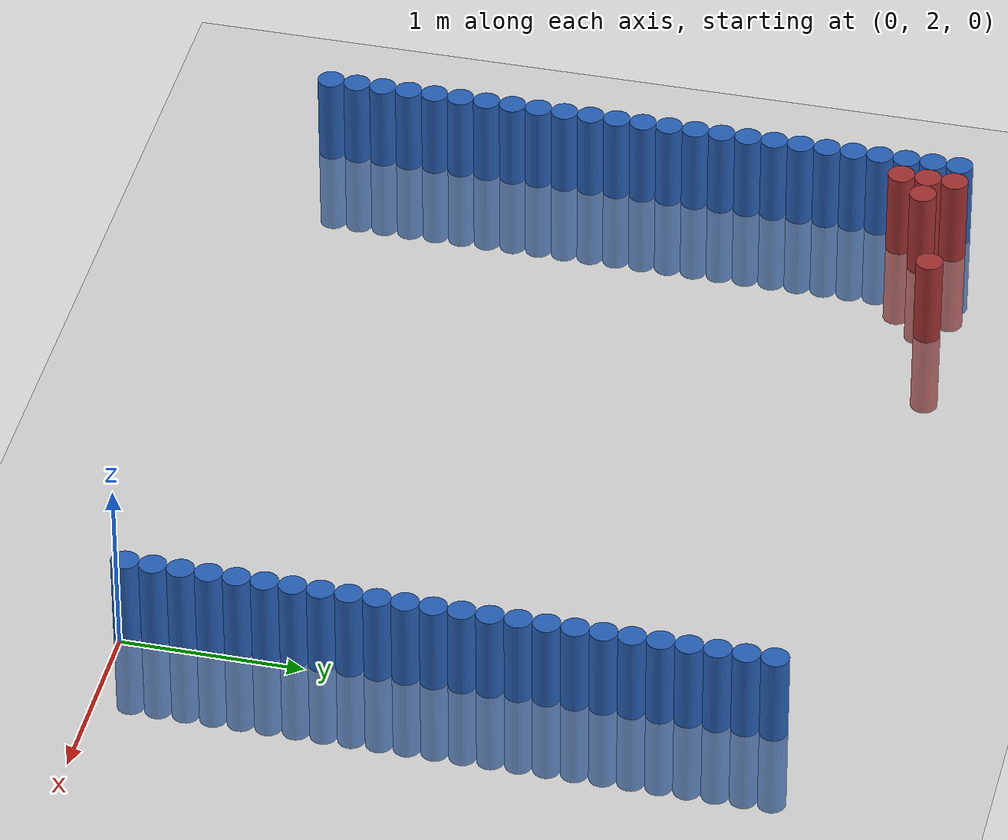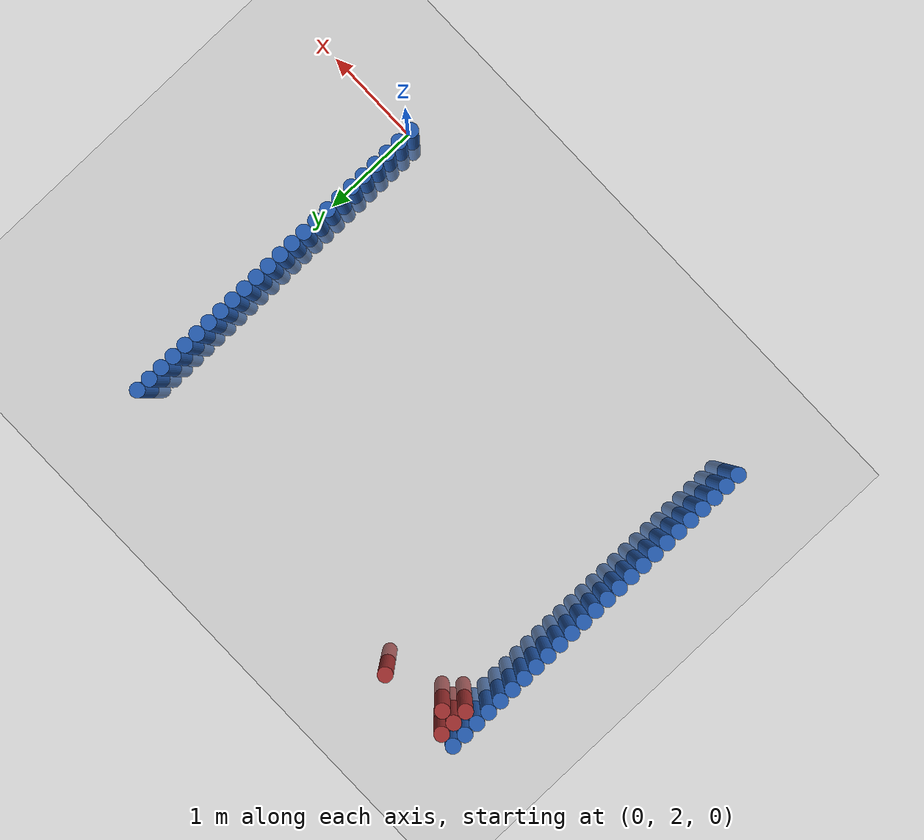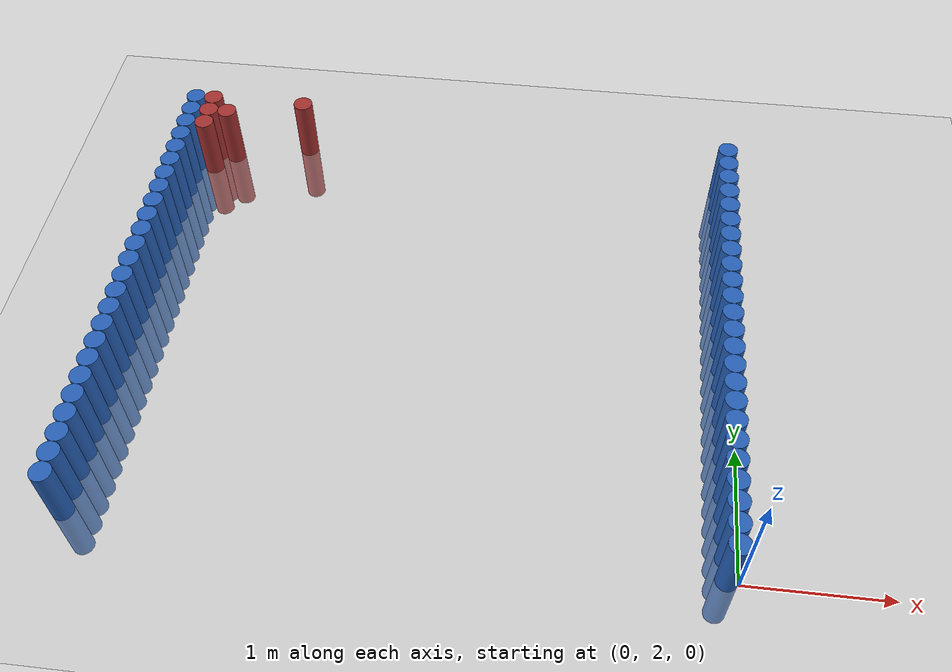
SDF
<sdf version="1.7">
 <world name="default">
  <model name="ground_plane">
   <static>1</static>
   <link name="link">
    <collision name="collision">
     <geometry><plane><normal>0 0 1</normal><size>100 100</size></plane></geometry>
     <surface><friction><ode><mu>100</mu><mu2>50</mu2></ode></friction></surface>
    </collision>
    <visual name="visual">
     <cast_shadows>0</cast_shadows>
     <geometry><plane><normal>0 0 1</normal><size>100 100</size></plane></geometry>
     <material>
      <script><uri>file://media/materials/scripts/gazebo.material</uri><name>Gazebo/Grey</name></script>
     </material>
    </visual>
   </link>
  </model>
  <model name="unit_cylinder_54">
   <static>1</static>
   <pose>-0.075 2.025 0 0 -0 0</pose>
   <link name="link">
    <inertial>
     <mass>1</mass>
     <inertia><ixx>0.145833</ixx><ixy>0</ixy><ixz>0</ixz><iyy>0.145833</iyy><iyz>0</iyz><izz>0.125</izz></inertia>
    </inertial>
    <collision name="collision">
     <geometry><cylinder><radius>0.075</radius><length>1</length></cylinder></geometry>
    </collision>
    <visual name="visual">
     <geometry><cylinder><radius>0.075</radius><length>1</length></cylinder></geometry>
     <material><ambient>0.152 0.379 0.72 1</ambient><diffuse>0.152 0.379 0.72 1</diffuse></material>
     <material>
      <script><name>Gazebo/Grey</name><uri>file://media/materials/scripts/gazebo.material</uri></script>
     </material>
    </visual>
   </link>
  </model>
  <model name="unit_cylinder_55">
   <static>1</static>
   <pose>-4.425 2.025 0 0 -0 0</pose>
   <link name="link">
    <inertial>
     <mass>1</mass>
     <inertia><ixx>0.145833</ixx><ixy>0</ixy><ixz>0</ixz><iyy>0.145833</iyy><iyz>0</iyz><izz>0.125</izz></inertia>
    </inertial>
    <collision name="collision">
     <geometry><cylinder><radius>0.075</radius><length>1</length></cylinder></geometry>
    </collision>
    <visual name="visual">
     <geometry><cylinder><radius>0.075</radius><length>1</length></cylinder></geometry>
     <material><ambient>0.152 0.379 0.72 1</ambient><diffuse>0.152 0.379 0.72 1</diffuse></material>
     <material>
      <script><name>Gazebo/Grey</name><uri>file://media/materials/scripts/gazebo.material</uri></script>
     </material>
    </visual>
   </link>
  </model>
  <model name="unit_cylinder_56">
   <static>1</static>
   <pose>-0.075 2.175 0 0 -0 0</pose>
   <link name="link">
    <inertial>
     <mass>1</mass>
     <inertia><ixx>0.145833</ixx><ixy>0</ixy><ixz>0</ixz><iyy>0.145833</iyy><iyz>0</iyz><izz>0.125</izz></inertia>
    </inertial>
    <collision name="collision">
     <geometry><cylinder><radius>0.075</radius><length>1</length></cylinder></geometry>
    </collision>
    <visual name="visual">
     <geometry><cylinder><radius>0.075</radius><length>1</length></cylinder></geometry>
     <material><ambient>0.152 0.379 0.72 1</ambient><diffuse>0.152 0.379 0.72 1</diffuse></material>
     <material>
      <script><name>Gazebo/Grey</name><uri>file://media/materials/scripts/gazebo.material</uri></script>
     </material>
    </visual>
   </link>
  </model>
  <model name="unit_cylinder_57">
   <static>1</static>
   <pose>-4.425 2.175 0 0 -0 0</pose>
   <link name="link">
    <inertial>
     <mass>1</mass>
     <inertia><ixx>0.145833</ixx><ixy>0</ixy><ixz>0</ixz><iyy>0.145833</iyy><iyz>0</iyz><izz>0.125</izz></inertia>
    </inertial>
    <collision name="collision">
     <geometry><cylinder><radius>0.075</radius><length>1</length></cylinder></geometry>
    </collision>
    <visual name="visual">
     <geometry><cylinder><radius>0.075</radius><length>1</length></cylinder></geometry>
     <material><ambient>0.152 0.379 0.72 1</ambient><diffuse>0.152 0.379 0.72 1</diffuse></material>
     <material>
      <script><name>Gazebo/Grey</name><uri>file://media/materials/scripts/gazebo.material</uri></script>
     </material>
    </visual>
   </link>
  </model>
  <model name="unit_cylinder_58">
   <static>1</static>
   <pose>-0.075 2.325 0 0 -0 0</pose>
   <link name="link">
    <inertial>
     <mass>1</mass>
     <inertia><ixx>0.145833</ixx><ixy>0</ixy><ixz>0</ixz><iyy>0.145833</iyy><iyz>0</iyz><izz>0.125</izz></inertia>
    </inertial>
    <collision name="collision">
     <geometry><cylinder><radius>0.075</radius><length>1</length></cylinder></geometry>
    </collision>
    <visual name="visual">
     <geometry><cylinder><radius>0.075</radius><length>1</length></cylinder></geometry>
     <material><ambient>0.152 0.379 0.72 1</ambient><diffuse>0.152 0.379 0.72 1</diffuse></material>
     <material>
      <script><name>Gazebo/Grey</name><uri>file://media/materials/scripts/gazebo.material</uri></script>
     </material>
    </visual>
   </link>
  </model>
  <model name="unit_cylinder_59">
   <static>1</static>
   <pose>-4.425 2.325 0 0 -0 0</pose>
   <link name="link">
    <inertial>
     <mass>1</mass>
     <inertia><ixx>0.145833</ixx><ixy>0</ixy><ixz>0</ixz><iyy>0.145833</iyy><iyz>0</iyz><izz>0.125</izz></inertia>
    </inertial>
    <collision name="collision">
     <geometry><cylinder><radius>0.075</radius><length>1</length></cylinder></geometry>
    </collision>
    <visual name="visual">
     <geometry><cylinder><radius>0.075</radius><length>1</length></cylinder></geometry>
     <material><ambient>0.152 0.379 0.72 1</ambient><diffuse>0.152 0.379 0.72 1</diffuse></material>
     <material>
      <script><name>Gazebo/Grey</name><uri>file://media/materials/scripts/gazebo.material</uri></script>
     </material>
    </visual>
   </link>
  </model>
  <model name="unit_cylinder_60">
   <static>1</static>
   <pose>-0.075 2.475 0 0 -0 0</pose>
   <link name="link">
    <inertial>
     <mass>1</mass>
     <inertia><ixx>0.145833</ixx><ixy>0</ixy><ixz>0</ixz><iyy>0.145833</iyy><iyz>0</iyz><izz>0.125</izz></inertia>
    </inertial>
    <collision name="collision">
     <geometry><cylinder><radius>0.075</radius><length>1</length></cylinder></geometry>
    </collision>
    <visual name="visual">
     <geometry><cylinder><radius>0.075</radius><length>1</length></cylinder></geometry>
     <material><ambient>0.152 0.379 0.72 1</ambient><diffuse>0.152 0.379 0.72 1</diffuse></material>
     <material>
      <script><name>Gazebo/Grey</name><uri>file://media/materials/scripts/gazebo.material</uri></script>
     </material>
    </visual>
   </link>
  </model>
  <model name="unit_cylinder_61">
   <static>1</static>
   <pose>-4.425 2.475 0 0 -0 0</pose>
   <link name="link">
    <inertial>
     <mass>1</mass>
     <inertia><ixx>0.145833</ixx><ixy>0</ixy><ixz>0</ixz><iyy>0.145833</iyy><iyz>0</iyz><izz>0.125</izz></inertia>
    </inertial>
    <collision name="collision">
     <geometry><cylinder><radius>0.075</radius><length>1</length></cylinder></geometry>
    </collision>
    <visual name="visual">
     <geometry><cylinder><radius>0.075</radius><length>1</length></cylinder></geometry>
     <material><ambient>0.152 0.379 0.72 1</ambient><diffuse>0.152 0.379 0.72 1</diffuse></material>
     <material>
      <script><name>Gazebo/Grey</name><uri>file://media/materials/scripts/gazebo.material</uri></script>
     </material>
    </visual>
   </link>
  </model>
  <model name="unit_cylinder_62">
   <static>1</static>
   <pose>-0.075 2.625 0 0 -0 0</pose>
   <link name="link">
    <inertial>
     <mass>1</mass>
     <inertia><ixx>0.145833</ixx><ixy>0</ixy><ixz>0</ixz><iyy>0.145833</iyy><iyz>0</iyz><izz>0.125</izz></inertia>
    </inertial>
    <collision name="collision">
     <geometry><cylinder><radius>0.075</radius><length>1</length></cylinder></geometry>
    </collision>
    <visual name="visual">
     <geometry><cylinder><radius>0.075</radius><length>1</length></cylinder></geometry>
     <material><ambient>0.152 0.379 0.72 1</ambient><diffuse>0.152 0.379 0.72 1</diffuse></material>
     <material>
      <script><name>Gazebo/Grey</name><uri>file://media/materials/scripts/gazebo.material</uri></script>
     </material>
    </visual>
   </link>
  </model>
  <model name="unit_cylinder_63">
   <static>1</static>
   <pose>-4.425 2.625 0 0 -0 0</pose>
   <link name="link">
    <inertial>
     <mass>1</mass>
     <inertia><ixx>0.145833</ixx><ixy>0</ixy><ixz>0</ixz><iyy>0.145833</iyy><iyz>0</iyz><izz>0.125</izz></inertia>
    </inertial>
    <collision name="collision">
     <geometry><cylinder><radius>0.075</radius><length>1</length></cylinder></geometry>
    </collision>
    <visual name="visual">
     <geometry><cylinder><radius>0.075</radius><length>1</length></cylinder></geometry>
     <material><ambient>0.152 0.379 0.72 1</ambient><diffuse>0.152 0.379 0.72 1</diffuse></material>
     <material>
      <script><name>Gazebo/Grey</name><uri>file://media/materials/scripts/gazebo.material</uri></script>
     </material>
    </visual>
   </link>
  </model>
  <model name="unit_cylinder_64">
   <static>1</static>
   <pose>-0.075 2.775 0 0 -0 0</pose>
   <link name="link">
    <inertial>
     <mass>1</mass>
     <inertia><ixx>0.145833</ixx><ixy>0</ixy><ixz>0</ixz><iyy>0.145833</iyy><iyz>0</iyz><izz>0.125</izz></inertia>
    </inertial>
    <collision name="collision">
     <geometry><cylinder><radius>0.075</radius><length>1</length></cylinder></geometry>
    </collision>
    <visual name="visual">
     <geometry><cylinder><radius>0.075</radius><length>1</length></cylinder></geometry>
     <material><ambient>0.152 0.379 0.72 1</ambient><diffuse>0.152 0.379 0.72 1</diffuse></material>
     <material>
      <script><name>Gazebo/Grey</name><uri>file://media/materials/scripts/gazebo.material</uri></script>
     </material>
    </visual>
   </link>
  </model>
  <model name="unit_cylinder_65">
   <static>1</static>
   <pose>-4.425 2.775 0 0 -0 0</pose>
   <link name="link">
    <inertial>
     <mass>1</mass>
     <inertia><ixx>0.145833</ixx><ixy>0</ixy><ixz>0</ixz><iyy>0.145833</iyy><iyz>0</iyz><izz>0.125</izz></inertia>
    </inertial>
    <collision name="collision">
     <geometry><cylinder><radius>0.075</radius><length>1</length></cylinder></geometry>
    </collision>
    <visual name="visual">
     <geometry><cylinder><radius>0.075</radius><length>1</length></cylinder></geometry>
     <material><ambient>0.152 0.379 0.72 1</ambient><diffuse>0.152 0.379 0.72 1</diffuse></material>
     <material>
      <script><name>Gazebo/Grey</name><uri>file://media/materials/scripts/gazebo.material</uri></script>
     </material>
    </visual>
   </link>
  </model>
  <model name="unit_cylinder_66">
   <static>1</static>
   <pose>-0.075 2.925 0 0 -0 0</pose>
   <link name="link">
    <inertial>
     <mass>1</mass>
     <inertia><ixx>0.145833</ixx><ixy>0</ixy><ixz>0</ixz><iyy>0.145833</iyy><iyz>0</iyz><izz>0.125</izz></inertia>
    </inertial>
    <collision name="collision">
     <geometry><cylinder><radius>0.075</radius><length>1</length></cylinder></geometry>
    </collision>
    <visual name="visual">
     <geometry><cylinder><radius>0.075</radius><length>1</length></cylinder></geometry>
     <material><ambient>0.152 0.379 0.72 1</ambient><diffuse>0.152 0.379 0.72 1</diffuse></material>
     <material>
      <script><name>Gazebo/Grey</name><uri>file://media/materials/scripts/gazebo.material</uri></script>
     </material>
    </visual>
   </link>
  </model>
  <model name="unit_cylinder_67">
   <static>1</static>
   <pose>-4.425 2.925 0 0 -0 0</pose>
   <link name="link">
    <inertial>
     <mass>1</mass>
     <inertia><ixx>0.145833</ixx><ixy>0</ixy><ixz>0</ixz><iyy>0.145833</iyy><iyz>0</iyz><izz>0.125</izz></inertia>
    </inertial>
    <collision name="collision">
     <geometry><cylinder><radius>0.075</radius><length>1</length></cylinder></geometry>
    </collision>
    <visual name="visual">
     <geometry><cylinder><radius>0.075</radius><length>1</length></cylinder></geometry>
     <material><ambient>0.152 0.379 0.72 1</ambient><diffuse>0.152 0.379 0.72 1</diffuse></material>
     <material>
      <script><name>Gazebo/Grey</name><uri>file://media/materials/scripts/gazebo.material</uri></script>
     </material>
    </visual>
   </link>
  </model>
  <model name="unit_cylinder_68">
   <static>1</static>
   <pose>-0.075 3.075 0 0 -0 0</pose>
   <link name="link">
    <inertial>
     <mass>1</mass>
     <inertia><ixx>0.145833</ixx><ixy>0</ixy><ixz>0</ixz><iyy>0.145833</iyy><iyz>0</iyz><izz>0.125</izz></inertia>
    </inertial>
    <collision name="collision">
     <geometry><cylinder><radius>0.075</radius><length>1</length></cylinder></geometry>
    </collision>
    <visual name="visual">
     <geometry><cylinder><radius>0.075</radius><length>1</length></cylinder></geometry>
     <material><ambient>0.152 0.379 0.72 1</ambient><diffuse>0.152 0.379 0.72 1</diffuse></material>
     <material>
      <script><name>Gazebo/Grey</name><uri>file://media/materials/scripts/gazebo.material</uri></script>
     </material>
    </visual>
   </link>
  </model>
  <model name="unit_cylinder_69">
   <static>1</static>
   <pose>-4.425 3.075 0 0 -0 0</pose>
   <link name="link">
    <inertial>
     <mass>1</mass>
     <inertia><ixx>0.145833</ixx><ixy>0</ixy><ixz>0</ixz><iyy>0.145833</iyy><iyz>0</iyz><izz>0.125</izz></inertia>
    </inertial>
    <collision name="collision">
     <geometry><cylinder><radius>0.075</radius><length>1</length></cylinder></geometry>
    </collision>
    <visual name="visual">
     <geometry><cylinder><radius>0.075</radius><length>1</length></cylinder></geometry>
     <material><ambient>0.152 0.379 0.72 1</ambient><diffuse>0.152 0.379 0.72 1</diffuse></material>
     <material>
      <script><name>Gazebo/Grey</name><uri>file://media/materials/scripts/gazebo.material</uri></script>
     </material>
    </visual>
   </link>
  </model>
  <model name="unit_cylinder_70">
   <static>1</static>
   <pose>-0.075 3.225 0 0 -0 0</pose>
   <link name="link">
    <inertial>
     <mass>1</mass>
     <inertia><ixx>0.145833</ixx><ixy>0</ixy><ixz>0</ixz><iyy>0.145833</iyy><iyz>0</iyz><izz>0.125</izz></inertia>
    </inertial>
    <collision name="collision">
     <geometry><cylinder><radius>0.075</radius><length>1</length></cylinder></geometry>
    </collision>
    <visual name="visual">
     <geometry><cylinder><radius>0.075</radius><length>1</length></cylinder></geometry>
     <material><ambient>0.152 0.379 0.72 1</ambient><diffuse>0.152 0.379 0.72 1</diffuse></material>
     <material>
      <script><name>Gazebo/Grey</name><uri>file://media/materials/scripts/gazebo.material</uri></script>
     </material>
    </visual>
   </link>
  </model>
  <model name="unit_cylinder_71">
   <static>1</static>
   <pose>-4.425 3.225 0 0 -0 0</pose>
   <link name="link">
    <inertial>
     <mass>1</mass>
     <inertia><ixx>0.145833</ixx><ixy>0</ixy><ixz>0</ixz><iyy>0.145833</iyy><iyz>0</iyz><izz>0.125</izz></inertia>
    </inertial>
    <collision name="collision">
     <geometry><cylinder><radius>0.075</radius><length>1</length></cylinder></geometry>
    </collision>
    <visual name="visual">
     <geometry><cylinder><radius>0.075</radius><length>1</length></cylinder></geometry>
     <material><ambient>0.152 0.379 0.72 1</ambient><diffuse>0.152 0.379 0.72 1</diffuse></material>
     <material>
      <script><name>Gazebo/Grey</name><uri>file://media/materials/scripts/gazebo.material</uri></script>
     </material>
    </visual>
   </link>
  </model>
  <model name="unit_cylinder_72">
   <static>1</static>
   <pose>-0.075 3.375 0 0 -0 0</pose>
   <link name="link">
    <inertial>
     <mass>1</mass>
     <inertia><ixx>0.145833</ixx><ixy>0</ixy><ixz>0</ixz><iyy>0.145833</iyy><iyz>0</iyz><izz>0.125</izz></inertia>
    </inertial>
    <collision name="collision">
     <geometry><cylinder><radius>0.075</radius><length>1</length></cylinder></geometry>
    </collision>
    <visual name="visual">
     <geometry><cylinder><radius>0.075</radius><length>1</length></cylinder></geometry>
     <material><ambient>0.152 0.379 0.72 1</ambient><diffuse>0.152 0.379 0.72 1</diffuse></material>
     <material>
      <script><name>Gazebo/Grey</name><uri>file://media/materials/scripts/gazebo.material</uri></script>
     </material>
    </visual>
   </link>
  </model>
  <model name="unit_cylinder_73">
   <static>1</static>
   <pose>-4.425 3.375 0 0 -0 0</pose>
   <link name="link">
    <inertial>
     <mass>1</mass>
     <inertia><ixx>0.145833</ixx><ixy>0</ixy><ixz>0</ixz><iyy>0.145833</iyy><iyz>0</iyz><izz>0.125</izz></inertia>
    </inertial>
    <collision name="collision">
     <geometry><cylinder><radius>0.075</radius><length>1</length></cylinder></geometry>
    </collision>
    <visual name="visual">
     <geometry><cylinder><radius>0.075</radius><length>1</length></cylinder></geometry>
     <material><ambient>0.152 0.379 0.72 1</ambient><diffuse>0.152 0.379 0.72 1</diffuse></material>
     <material>
      <script><name>Gazebo/Grey</name><uri>file://media/materials/scripts/gazebo.material</uri></script>
     </material>
    </visual>
   </link>
  </model>
  <model name="unit_cylinder_74">
   <static>1</static>
   <pose>-0.075 3.525 0 0 -0 0</pose>
   <link name="link">
    <inertial>
     <mass>1</mass>
     <inertia><ixx>0.145833</ixx><ixy>0</ixy><ixz>0</ixz><iyy>0.145833</iyy><iyz>0</iyz><izz>0.125</izz></inertia>
    </inertial>
    <collision name="collision">
     <geometry><cylinder><radius>0.075</radius><length>1</length></cylinder></geometry>
    </collision>
    <visual name="visual">
     <geometry><cylinder><radius>0.075</radius><length>1</length></cylinder></geometry>
     <material><ambient>0.152 0.379 0.72 1</ambient><diffuse>0.152 0.379 0.72 1</diffuse></material>
     <material>
      <script><name>Gazebo/Grey</name><uri>file://media/materials/scripts/gazebo.material</uri></script>
     </material>
    </visual>
   </link>
  </model>
  <model name="unit_cylinder_75">
   <static>1</static>
   <pose>-4.425 3.525 0 0 -0 0</pose>
   <link name="link">
    <inertial>
     <mass>1</mass>
     <inertia><ixx>0.145833</ixx><ixy>0</ixy><ixz>0</ixz><iyy>0.145833</iyy><iyz>0</iyz><izz>0.125</izz></inertia>
    </inertial>
    <collision name="collision">
     <geometry><cylinder><radius>0.075</radius><length>1</length></cylinder></geometry>
    </collision>
    <visual name="visual">
     <geometry><cylinder><radius>0.075</radius><length>1</length></cylinder></geometry>
     <material><ambient>0.152 0.379 0.72 1</ambient><diffuse>0.152 0.379 0.72 1</diffuse></material>
     <material>
      <script><name>Gazebo/Grey</name><uri>file://media/materials/scripts/gazebo.material</uri></script>
     </material>
    </visual>
   </link>
  </model>
  <model name="unit_cylinder_76">
   <static>1</static>
   <pose>-0.075 3.675 0 0 -0 0</pose>
   <link name="link">
    <inertial>
     <mass>1</mass>
     <inertia><ixx>0.145833</ixx><ixy>0</ixy><ixz>0</ixz><iyy>0.145833</iyy><iyz>0</iyz><izz>0.125</izz></inertia>
    </inertial>
    <collision name="collision">
     <geometry><cylinder><radius>0.075</radius><length>1</length></cylinder></geometry>
    </collision>
    <visual name="visual">
     <geometry><cylinder><radius>0.075</radius><length>1</length></cylinder></geometry>
     <material><ambient>0.152 0.379 0.72 1</ambient><diffuse>0.152 0.379 0.72 1</diffuse></material>
     <material>
      <script><name>Gazebo/Grey</name><uri>file://media/materials/scripts/gazebo.material</uri></script>
     </material>
    </visual>
   </link>
  </model>
  <model name="unit_cylinder_77">
   <static>1</static>
   <pose>-4.425 3.675 0 0 -0 0</pose>
   <link name="link">
    <inertial>
     <mass>1</mass>
     <inertia><ixx>0.145833</ixx><ixy>0</ixy><ixz>0</ixz><iyy>0.145833</iyy><iyz>0</iyz><izz>0.125</izz></inertia>
    </inertial>
    <collision name="collision">
     <geometry><cylinder><radius>0.075</radius><length>1</length></cylinder></geometry>
    </collision>
    <visual name="visual">
     <geometry><cylinder><radius>0.075</radius><length>1</length></cylinder></geometry>
     <material><ambient>0.152 0.379 0.72 1</ambient><diffuse>0.152 0.379 0.72 1</diffuse></material>
     <material>
      <script><name>Gazebo/Grey</name><uri>file://media/materials/scripts/gazebo.material</uri></script>
     </material>
    </visual>
   </link>
  </model>
  <model name="unit_cylinder_78">
   <static>1</static>
   <pose>-0.075 3.825 0 0 -0 0</pose>
   <link name="link">
    <inertial>
     <mass>1</mass>
     <inertia><ixx>0.145833</ixx><ixy>0</ixy><ixz>0</ixz><iyy>0.145833</iyy><iyz>0</iyz><izz>0.125</izz></inertia>
    </inertial>
    <collision name="collision">
     <geometry><cylinder><radius>0.075</radius><length>1</length></cylinder></geometry>
    </collision>
    <visual name="visual">
     <geometry><cylinder><radius>0.075</radius><length>1</length></cylinder></geometry>
     <material><ambient>0.152 0.379 0.72 1</ambient><diffuse>0.152 0.379 0.72 1</diffuse></material>
     <material>
      <script><name>Gazebo/Grey</name><uri>file://media/materials/scripts/gazebo.material</uri></script>
     </material>
    </visual>
   </link>
  </model>
  <model name="unit_cylinder_79">
   <static>1</static>
   <pose>-4.425 3.825 0 0 -0 0</pose>
   <link name="link">
    <inertial>
     <mass>1</mass>
     <inertia><ixx>0.145833</ixx><ixy>0</ixy><ixz>0</ixz><iyy>0.145833</iyy><iyz>0</iyz><izz>0.125</izz></inertia>
    </inertial>
    <collision name="collision">
     <geometry><cylinder><radius>0.075</radius><length>1</length></cylinder></geometry>
    </collision>
    <visual name="visual">
     <geometry><cylinder><radius>0.075</radius><length>1</length></cylinder></geometry>
     <material><ambient>0.152 0.379 0.72 1</ambient><diffuse>0.152 0.379 0.72 1</diffuse></material>
     <material>
      <script><name>Gazebo/Grey</name><uri>file://media/materials/scripts/gazebo.material</uri></script>
     </material>
    </visual>
   </link>
  </model>
  <model name="unit_cylinder_80">
   <static>1</static>
   <pose>-0.075 3.975 0 0 -0 0</pose>
   <link name="link">
    <inertial>
     <mass>1</mass>
     <inertia><ixx>0.145833</ixx><ixy>0</ixy><ixz>0</ixz><iyy>0.145833</iyy><iyz>0</iyz><izz>0.125</izz></inertia>
    </inertial>
    <collision name="collision">
     <geometry><cylinder><radius>0.075</radius><length>1</length></cylinder></geometry>
    </collision>
    <visual name="visual">
     <geometry><cylinder><radius>0.075</radius><length>1</length></cylinder></geometry>
     <material><ambient>0.152 0.379 0.72 1</ambient><diffuse>0.152 0.379 0.72 1</diffuse></material>
     <material>
      <script><name>Gazebo/Grey</name><uri>file://media/materials/scripts/gazebo.material</uri></script>
     </material>
    </visual>
   </link>
  </model>
  <model name="unit_cylinder_81">
   <static>1</static>
   <pose>-4.425 3.975 0 0 -0 0</pose>
   <link name="link">
    <inertial>
     <mass>1</mass>
     <inertia><ixx>0.145833</ixx><ixy>0</ixy><ixz>0</ixz><iyy>0.145833</iyy><iyz>0</iyz><izz>0.125</izz></inertia>
    </inertial>
    <collision name="collision">
     <geometry><cylinder><radius>0.075</radius><length>1</length></cylinder></geometry>
    </collision>
    <visual name="visual">
     <geometry><cylinder><radius>0.075</radius><length>1</length></cylinder></geometry>
     <material><ambient>0.152 0.379 0.72 1</ambient><diffuse>0.152 0.379 0.72 1</diffuse></material>
     <material>
      <script><name>Gazebo/Grey</name><uri>file://media/materials/scripts/gazebo.material</uri></script>
     </material>
    </visual>
   </link>
  </model>
  <model name="unit_cylinder_82">
   <static>1</static>
   <pose>-0.075 4.125 0 0 -0 0</pose>
   <link name="link">
    <inertial>
     <mass>1</mass>
     <inertia><ixx>0.145833</ixx><ixy>0</ixy><ixz>0</ixz><iyy>0.145833</iyy><iyz>0</iyz><izz>0.125</izz></inertia>
    </inertial>
    <collision name="collision">
     <geometry><cylinder><radius>0.075</radius><length>1</length></cylinder></geometry>
    </collision>
    <visual name="visual">
     <geometry><cylinder><radius>0.075</radius><length>1</length></cylinder></geometry>
     <material><ambient>0.152 0.379 0.72 1</ambient><diffuse>0.152 0.379 0.72 1</diffuse></material>
     <material>
      <script><name>Gazebo/Grey</name><uri>file://media/materials/scripts/gazebo.material</uri></script>
     </material>
    </visual>
   </link>
  </model>
  <model name="unit_cylinder_83">
   <static>1</static>
   <pose>-4.425 4.125 0 0 -0 0</pose>
   <link name="link">
    <inertial>
     <mass>1</mass>
     <inertia><ixx>0.145833</ixx><ixy>0</ixy><ixz>0</ixz><iyy>0.145833</iyy><iyz>0</iyz><izz>0.125</izz></inertia>
    </inertial>
    <collision name="collision">
     <geometry><cylinder><radius>0.075</radius><length>1</length></cylinder></geometry>
    </collision>
    <visual name="visual">
     <geometry><cylinder><radius>0.075</radius><length>1</length></cylinder></geometry>
     <material><ambient>0.152 0.379 0.72 1</ambient><diffuse>0.152 0.379 0.72 1</diffuse></material>
     <material>
      <script><name>Gazebo/Grey</name><uri>file://media/materials/scripts/gazebo.material</uri></script>
     </material>
    </visual>
   </link>
  </model>
  <model name="unit_cylinder_84">
   <static>1</static>
   <pose>-0.075 4.275 0 0 -0 0</pose>
   <link name="link">
    <inertial>
     <mass>1</mass>
     <inertia><ixx>0.145833</ixx><ixy>0</ixy><ixz>0</ixz><iyy>0.145833</iyy><iyz>0</iyz><izz>0.125</izz></inertia>
    </inertial>
    <collision name="collision">
     <geometry><cylinder><radius>0.075</radius><length>1</length></cylinder></geometry>
    </collision>
    <visual name="visual">
     <geometry><cylinder><radius>0.075</radius><length>1</length></cylinder></geometry>
     <material><ambient>0.152 0.379 0.72 1</ambient><diffuse>0.152 0.379 0.72 1</diffuse></material>
     <material>
      <script><name>Gazebo/Grey</name><uri>file://media/materials/scripts/gazebo.material</uri></script>
     </material>
    </visual>
   </link>
  </model>
  <model name="unit_cylinder_85">
   <static>1</static>
   <pose>-4.425 4.275 0 0 -0 0</pose>
   <link name="link">
    <inertial>
     <mass>1</mass>
     <inertia><ixx>0.145833</ixx><ixy>0</ixy><ixz>0</ixz><iyy>0.145833</iyy><iyz>0</iyz><izz>0.125</izz></inertia>
    </inertial>
    <collision name="collision">
     <geometry><cylinder><radius>0.075</radius><length>1</length></cylinder></geometry>
    </collision>
    <visual name="visual">
     <geometry><cylinder><radius>0.075</radius><length>1</length></cylinder></geometry>
     <material><ambient>0.152 0.379 0.72 1</ambient><diffuse>0.152 0.379 0.72 1</diffuse></material>
     <material>
      <script><name>Gazebo/Grey</name><uri>file://media/materials/scripts/gazebo.material</uri></script>
     </material>
    </visual>
   </link>
  </model>
  <model name="unit_cylinder_86">
   <static>1</static>
   <pose>-0.075 4.425 0 0 -0 0</pose>
   <link name="link">
    <inertial>
     <mass>1</mass>
     <inertia><ixx>0.145833</ixx><ixy>0</ixy><ixz>0</ixz><iyy>0.145833</iyy><iyz>0</iyz><izz>0.125</izz></inertia>
    </inertial>
    <collision name="collision">
     <geometry><cylinder><radius>0.075</radius><length>1</length></cylinder></geometry>
    </collision>
    <visual name="visual">
     <geometry><cylinder><radius>0.075</radius><length>1</length></cylinder></geometry>
     <material><ambient>0.152 0.379 0.72 1</ambient><diffuse>0.152 0.379 0.72 1</diffuse></material>
     <material>
      <script><name>Gazebo/Grey</name><uri>file://media/materials/scripts/gazebo.material</uri></script>
     </material>
    </visual>
   </link>
  </model>
  <model name="unit_cylinder_87">
   <static>1</static>
   <pose>-4.425 4.425 0 0 -0 0</pose>
   <link name="link">
    <inertial>
     <mass>1</mass>
     <inertia><ixx>0.145833</ixx><ixy>0</ixy><ixz>0</ixz><iyy>0.145833</iyy><iyz>0</iyz><izz>0.125</izz></inertia>
    </inertial>
    <collision name="collision">
     <geometry><cylinder><radius>0.075</radius><length>1</length></cylinder></geometry>
    </collision>
    <visual name="visual">
     <geometry><cylinder><radius>0.075</radius><length>1</length></cylinder></geometry>
     <material><ambient>0.152 0.379 0.72 1</ambient><diffuse>0.152 0.379 0.72 1</diffuse></material>
     <material>
      <script><name>Gazebo/Grey</name><uri>file://media/materials/scripts/gazebo.material</uri></script>
     </material>
    </visual>
   </link>
  </model>
  <model name="unit_cylinder_88">
   <static>1</static>
   <pose>-0.075 4.575 0 0 -0 0</pose>
   <link name="link">
    <inertial>
     <mass>1</mass>
     <inertia><ixx>0.145833</ixx><ixy>0</ixy><ixz>0</ixz><iyy>0.145833</iyy><iyz>0</iyz><izz>0.125</izz></inertia>
    </inertial>
    <collision name="collision">
     <geometry><cylinder><radius>0.075</radius><length>1</length></cylinder></geometry>
    </collision>
    <visual name="visual">
     <geometry><cylinder><radius>0.075</radius><length>1</length></cylinder></geometry>
     <material><ambient>0.152 0.379 0.72 1</ambient><diffuse>0.152 0.379 0.72 1</diffuse></material>
     <material>
      <script><name>Gazebo/Grey</name><uri>file://media/materials/scripts/gazebo.material</uri></script>
     </material>
    </visual>
   </link>
  </model>
  <model name="unit_cylinder_89">
   <static>1</static>
   <pose>-4.425 4.575 0 0 -0 0</pose>
   <link name="link">
    <inertial>
     <mass>1</mass>
     <inertia><ixx>0.145833</ixx><ixy>0</ixy><ixz>0</ixz><iyy>0.145833</iyy><iyz>0</iyz><izz>0.125</izz></inertia>
    </inertial>
    <collision name="collision">
     <geometry><cylinder><radius>0.075</radius><length>1</length></cylinder></geometry>
    </collision>
    <visual name="visual">
     <geometry><cylinder><radius>0.075</radius><length>1</length></cylinder></geometry>
     <material><ambient>0.152 0.379 0.72 1</ambient><diffuse>0.152 0.379 0.72 1</diffuse></material>
     <material>
      <script><name>Gazebo/Grey</name><uri>file://media/materials/scripts/gazebo.material</uri></script>
     </material>
    </visual>
   </link>
  </model>
  <model name="unit_cylinder_90">
   <static>1</static>
   <pose>-0.075 4.725 0 0 -0 0</pose>
   <link name="link">
    <inertial>
     <mass>1</mass>
     <inertia><ixx>0.145833</ixx><ixy>0</ixy><ixz>0</ixz><iyy>0.145833</iyy><iyz>0</iyz><izz>0.125</izz></inertia>
    </inertial>
    <collision name="collision">
     <geometry><cylinder><radius>0.075</radius><length>1</length></cylinder></geometry>
    </collision>
    <visual name="visual">
     <geometry><cylinder><radius>0.075</radius><length>1</length></cylinder></geometry>
     <material><ambient>0.152 0.379 0.72 1</ambient><diffuse>0.152 0.379 0.72 1</diffuse></material>
     <material>
      <script><name>Gazebo/Grey</name><uri>file://media/materials/scripts/gazebo.material</uri></script>
     </material>
    </visual>
   </link>
  </model>
  <model name="unit_cylinder_91">
   <static>1</static>
   <pose>-4.425 4.725 0 0 -0 0</pose>
   <link name="link">
    <inertial>
     <mass>1</mass>
     <inertia><ixx>0.145833</ixx><ixy>0</ixy><ixz>0</ixz><iyy>0.145833</iyy><iyz>0</iyz><izz>0.125</izz></inertia>
    </inertial>
    <collision name="collision">
     <geometry><cylinder><radius>0.075</radius><length>1</length></cylinder></geometry>
    </collision>
    <visual name="visual">
     <geometry><cylinder><radius>0.075</radius><length>1</length></cylinder></geometry>
     <material><ambient>0.152 0.379 0.72 1</ambient><diffuse>0.152 0.379 0.72 1</diffuse></material>
     <material>
      <script><name>Gazebo/Grey</name><uri>file://media/materials/scripts/gazebo.material</uri></script>
     </material>
    </visual>
   </link>
  </model>
  <model name="unit_cylinder_92">
   <static>1</static>
   <pose>-0.075 4.875 0 0 -0 0</pose>
   <link name="link">
    <inertial>
     <mass>1</mass>
     <inertia><ixx>0.145833</ixx><ixy>0</ixy><ixz>0</ixz><iyy>0.145833</iyy><iyz>0</iyz><izz>0.125</izz></inertia>
    </inertial>
    <collision name="collision">
     <geometry><cylinder><radius>0.075</radius><length>1</length></cylinder></geometry>
    </collision>
    <visual name="visual">
     <geometry><cylinder><radius>0.075</radius><length>1</length></cylinder></geometry>
     <material><ambient>0.152 0.379 0.72 1</ambient><diffuse>0.152 0.379 0.72 1</diffuse></material>
     <material>
      <script><name>Gazebo/Grey</name><uri>file://media/materials/scripts/gazebo.material</uri></script>
     </material>
    </visual>
   </link>
  </model>
  <model name="unit_cylinder_93">
   <static>1</static>
   <pose>-4.425 4.875 0 0 -0 0</pose>
   <link name="link">
    <inertial>
     <mass>1</mass>
     <inertia><ixx>0.145833</ixx><ixy>0</ixy><ixz>0</ixz><iyy>0.145833</iyy><iyz>0</iyz><izz>0.125</izz></inertia>
    </inertial>
    <collision name="collision">
     <geometry><cylinder><radius>0.075</radius><length>1</length></cylinder></geometry>
    </collision>
    <visual name="visual">
     <geometry><cylinder><radius>0.075</radius><length>1</length></cylinder></geometry>
     <material><ambient>0.152 0.379 0.72 1</ambient><diffuse>0.152 0.379 0.72 1</diffuse></material>
     <material>
      <script><name>Gazebo/Grey</name><uri>file://media/materials/scripts/gazebo.material</uri></script>
     </material>
    </visual>
   </link>
  </model>
  <model name="unit_cylinder_94">
   <static>1</static>
   <pose>-0.075 5.025 0 0 -0 0</pose>
   <link name="link">
    <inertial>
     <mass>1</mass>
     <inertia><ixx>0.145833</ixx><ixy>0</ixy><ixz>0</ixz><iyy>0.145833</iyy><iyz>0</iyz><izz>0.125</izz></inertia>
    </inertial>
    <collision name="collision">
     <geometry><cylinder><radius>0.075</radius><length>1</length></cylinder></geometry>
    </collision>
    <visual name="visual">
     <geometry><cylinder><radius>0.075</radius><length>1</length></cylinder></geometry>
     <material><ambient>0.152 0.379 0.72 1</ambient><diffuse>0.152 0.379 0.72 1</diffuse></material>
     <material>
      <script><name>Gazebo/Grey</name><uri>file://media/materials/scripts/gazebo.material</uri></script>
     </material>
    </visual>
   </link>
  </model>
  <model name="unit_cylinder_95">
   <static>1</static>
   <pose>-4.425 5.025 0 0 -0 0</pose>
   <link name="link">
    <inertial>
     <mass>1</mass>
     <inertia><ixx>0.145833</ixx><ixy>0</ixy><ixz>0</ixz><iyy>0.145833</iyy><iyz>0</iyz><izz>0.125</izz></inertia>
    </inertial>
    <collision name="collision">
     <geometry><cylinder><radius>0.075</radius><length>1</length></cylinder></geometry>
    </collision>
    <visual name="visual">
     <geometry><cylinder><radius>0.075</radius><length>1</length></cylinder></geometry>
     <material><ambient>0.152 0.379 0.72 1</ambient><diffuse>0.152 0.379 0.72 1</diffuse></material>
     <material>
      <script><name>Gazebo/Grey</name><uri>file://media/materials/scripts/gazebo.material</uri></script>
     </material>
    </visual>
   </link>
  </model>
  <model name="unit_cylinder_96">
   <static>1</static>
   <pose>-4.425 5.175 0 0 -0 0</pose>
   <link name="link">
    <inertial>
     <mass>1</mass>
     <inertia><ixx>0.145833</ixx><ixy>0</ixy><ixz>0</ixz><iyy>0.145833</iyy><iyz>0</iyz><izz>0.125</izz></inertia>
    </inertial>
    <collision name="collision">
     <geometry><cylinder><radius>0.075</radius><length>1</length></cylinder></geometry>
    </collision>
    <visual name="visual">
     <geometry><cylinder><radius>0.075</radius><length>1</length></cylinder></geometry>
     <material><ambient>0.152 0.379 0.72 1</ambient><diffuse>0.152 0.379 0.72 1</diffuse></material>
     <material>
      <script><name>Gazebo/Grey</name><uri>file://media/materials/scripts/gazebo.material</uri></script>
     </material>
    </visual>
   </link>
  </model>
  <model name="unit_cylinder_97">
   <static>1</static>
   <pose>-4.425 5.325 0 0 -0 0</pose>
   <link name="link">
    <inertial>
     <mass>1</mass>
     <inertia><ixx>0.145833</ixx><ixy>0</ixy><ixz>0</ixz><iyy>0.145833</iyy><iyz>0</iyz><izz>0.125</izz></inertia>
    </inertial>
    <collision name="collision">
     <geometry><cylinder><radius>0.075</radius><length>1</length></cylinder></geometry>
    </collision>
    <visual name="visual">
     <geometry><cylinder><radius>0.075</radius><length>1</length></cylinder></geometry>
     <material><ambient>0.152 0.379 0.72 1</ambient><diffuse>0.152 0.379 0.72 1</diffuse></material>
     <material>
      <script><name>Gazebo/Grey</name><uri>file://media/materials/scripts/gazebo.material</uri></script>
     </material>
    </visual>
   </link>
  </model>
  <model name="unit_cylinder_98">
   <static>1</static>
   <pose>-4.425 5.475 0 0 -0 0</pose>
   <link name="link">
    <inertial>
     <mass>1</mass>
     <inertia><ixx>0.145833</ixx><ixy>0</ixy><ixz>0</ixz><iyy>0.145833</iyy><iyz>0</iyz><izz>0.125</izz></inertia>
    </inertial>
    <collision name="collision">
     <geometry><cylinder><radius>0.075</radius><length>1</length></cylinder></geometry>
    </collision>
    <visual name="visual">
     <geometry><cylinder><radius>0.075</radius><length>1</length></cylinder></geometry>
     <material><ambient>0.152 0.379 0.72 1</ambient><diffuse>0.152 0.379 0.72 1</diffuse></material>
     <material>
      <script><name>Gazebo/Grey</name><uri>file://media/materials/scripts/gazebo.material</uri></script>
     </material>
    </visual>
   </link>
  </model>
  <model name="unit_cylinder_99">
   <static>1</static>
   <pose>-4.425 5.625 0 0 -0 0</pose>
   <link name="link">
    <inertial>
     <mass>1</mass>
     <inertia><ixx>0.145833</ixx><ixy>0</ixy><ixz>0</ixz><iyy>0.145833</iyy><iyz>0</iyz><izz>0.125</izz></inertia>
    </inertial>
    <collision name="collision">
     <geometry><cylinder><radius>0.075</radius><length>1</length></cylinder></geometry>
    </collision>
    <visual name="visual">
     <geometry><cylinder><radius>0.075</radius><length>1</length></cylinder></geometry>
     <material><ambient>0.152 0.379 0.72 1</ambient><diffuse>0.152 0.379 0.72 1</diffuse></material>
     <material>
      <script><name>Gazebo/Grey</name><uri>file://media/materials/scripts/gazebo.material</uri></script>
     </material>
    </visual>
   </link>
  </model>
  <model name="unit_cylinder_126">
   <static>1</static>
   <pose>-4.275 5.325 0 0 -0 0</pose>
   <link name="link">
    <inertial>
     <mass>1</mass>
     <inertia><ixx>0.145833</ixx><ixy>0</ixy><ixz>0</ixz><iyy>0.145833</iyy><iyz>0</iyz><izz>0.125</izz></inertia>
    </inertial>
    <collision name="collision">
     <geometry><cylinder><radius>0.075</radius><length>1</length></cylinder></geometry>
    </collision>
    <visual name="visual">
     <geometry><cylinder><radius>0.075</radius><length>1</length></cylinder></geometry>
     <material><ambient>0.648 0.192 0.192 1</ambient><diffuse>0.648 0.192 0.192 1</diffuse></material>
     <material>
      <script><name>Gazebo/Grey</name><uri>file://media/materials/scripts/gazebo.material</uri></script>
     </material>
    </visual>
   </link>
  </model>
  <model name="unit_cylinder_127">
   <static>1</static>
   <pose>-4.275 5.475 0 0 -0 0</pose>
   <link name="link">
    <inertial>
     <mass>1</mass>
     <inertia><ixx>0.145833</ixx><ixy>0</ixy><ixz>0</ixz><iyy>0.145833</iyy><iyz>0</iyz><izz>0.125</izz></inertia>
    </inertial>
    <collision name="collision">
     <geometry><cylinder><radius>0.075</radius><length>1</length></cylinder></geometry>
    </collision>
    <visual name="visual">
     <geometry><cylinder><radius>0.075</radius><length>1</length></cylinder></geometry>
     <material><ambient>0.648 0.192 0.192 1</ambient><diffuse>0.648 0.192 0.192 1</diffuse></material>
     <material>
      <script><name>Gazebo/Grey</name><uri>file://media/materials/scripts/gazebo.material</uri></script>
     </material>
    </visual>
   </link>
  </model>
  <model name="unit_cylinder_128">
   <static>1</static>
   <pose>-4.275 5.625 0 0 -0 0</pose>
   <link name="link">
    <inertial>
     <mass>1</mass>
     <inertia><ixx>0.145833</ixx><ixy>0</ixy><ixz>0</ixz><iyy>0.145833</iyy><iyz>0</iyz><izz>0.125</izz></inertia>
    </inertial>
    <collision name="collision">
     <geometry><cylinder><radius>0.075</radius><length>1</length></cylinder></geometry>
    </collision>
    <visual name="visual">
     <geometry><cylinder><radius>0.075</radius><length>1</length></cylinder></geometry>
     <material><ambient>0.648 0.192 0.192 1</ambient><diffuse>0.648 0.192 0.192 1</diffuse></material>
     <material>
      <script><name>Gazebo/Grey</name><uri>file://media/materials/scripts/gazebo.material</uri></script>
     </material>
    </visual>
   </link>
  </model>
  <model name="unit_cylinder_130">
   <static>1</static>
   <pose>-4.125 5.475 0 0 -0 0</pose>
   <link name="link">
    <inertial>
     <mass>1</mass>
     <inertia><ixx>0.145833</ixx><ixy>0</ixy><ixz>0</ixz><iyy>0.145833</iyy><iyz>0</iyz><izz>0.125</izz></inertia>
    </inertial>
    <collision name="collision">
     <geometry><cylinder><radius>0.075</radius><length>1</length></cylinder></geometry>
    </collision>
    <visual name="visual">
     <geometry><cylinder><radius>0.075</radius><length>1</length></cylinder></geometry>
     <material><ambient>0.648 0.192 0.192 1</ambient><diffuse>0.648 0.192 0.192 1</diffuse></material>
     <material>
      <script><name>Gazebo/Grey</name><uri>file://media/materials/scripts/gazebo.material</uri></script>
     </material>
    </visual>
   </link>
  </model>
  <model name="unit_cylinder_139">
   <static>1</static>
   <pose>-3.525 5.625 0 0 -0 0</pose>
   <link name="link">
    <inertial>
     <mass>1</mass>
     <inertia><ixx>0.145833</ixx><ixy>0</ixy><ixz>0</ixz><iyy>0.145833</iyy><iyz>0</iyz><izz>0.125</izz></inertia>
    </inertial>
    <collision name="collision">
     <geometry><cylinder><radius>0.075</radius><length>1</length></cylinder></geometry>
    </collision>
    <visual name="visual">
     <geometry><cylinder><radius>0.075</radius><length>1</length></cylinder></geometry>
     <material><ambient>0.648 0.192 0.192 1</ambient><diffuse>0.648 0.192 0.192 1</diffuse></material>
     <material>
      <script><name>Gazebo/Grey</name><uri>file://media/materials/scripts/gazebo.material</uri></script>
     </material>
    </visual>
   </link>
  </model>
  <model name="unit_cylinder_207">
   <static>1</static>
   <pose>-0.075 5.175 0 0 -0 0</pose>
   <link name="link">
    <inertial>
     <mass>1</mass>
     <inertia><ixx>0.145833</ixx><ixy>0</ixy><ixz>0</ixz><iyy>0.145833</iyy><iyz>0</iyz><izz>0.125</izz></inertia>
    </inertial>
    <collision name="collision">
     <geometry><cylinder><radius>0.075</radius><length>1</length></cylinder></geometry>
    </collision>
    <visual name="visual">
     <geometry><cylinder><radius>0.075</radius><length>1</length></cylinder></geometry>
     <material><ambient>0.152 0.379 0.72 1</ambient><diffuse>0.152 0.379 0.72 1</diffuse></material>
     <material>
      <script><name>Gazebo/Grey</name><uri>file://media/materials/scripts/gazebo.material</uri></script>
     </material>
    </visual>
   </link>
  </model>
  <model name="unit_cylinder_208">
   <static>1</static>
   <pose>-0.075 5.325 0 0 -0 0</pose>
   <link name="link">
    <inertial>
     <mass>1</mass>
     <inertia><ixx>0.145833</ixx><ixy>0</ixy><ixz>0</ixz><iyy>0.145833</iyy><iyz>0</iyz><izz>0.125</izz></inertia>
    </inertial>
    <collision name="collision">
     <geometry><cylinder><radius>0.075</radius><length>1</length></cylinder></geometry>
    </collision>
    <visual name="visual">
     <geometry><cylinder><radius>0.075</radius><length>1</length></cylinder></geometry>
     <material><ambient>0.152 0.379 0.72 1</ambient><diffuse>0.152 0.379 0.72 1</diffuse></material>
     <material>
      <script><name>Gazebo/Grey</name><uri>file://media/materials/scripts/gazebo.material</uri></script>
     </material>
    </visual>
   </link>
  </model>
  <model name="unit_cylinder_209">
   <static>1</static>
   <pose>-0.075 5.475 0 0 -0 0</pose>
   <link name="link">
    <inertial>
     <mass>1</mass>
     <inertia><ixx>0.145833</ixx><ixy>0</ixy><ixz>0</ixz><iyy>0.145833</iyy><iyz>0</iyz><izz>0.125</izz></inertia>
    </inertial>
    <collision name="collision">
     <geometry><cylinder><radius>0.075</radius><length>1</length></cylinder></geometry>
    </collision>
    <visual name="visual">
     <geometry><cylinder><radius>0.075</radius><length>1</length></cylinder></geometry>
     <material><ambient>0.152 0.379 0.72 1</ambient><diffuse>0.152 0.379 0.72 1</diffuse></material>
     <material>
      <script><name>Gazebo/Grey</name><uri>file://media/materials/scripts/gazebo.material</uri></script>
     </material>
    </visual>
   </link>
  </model>
 </world>
</sdf>
